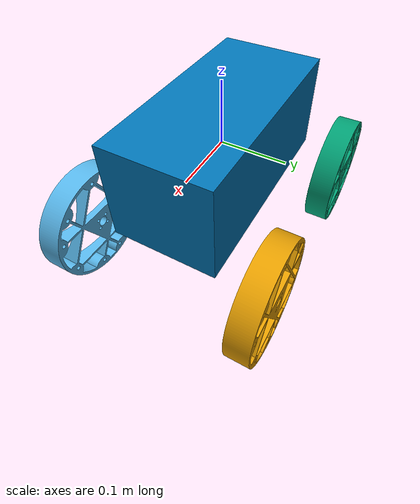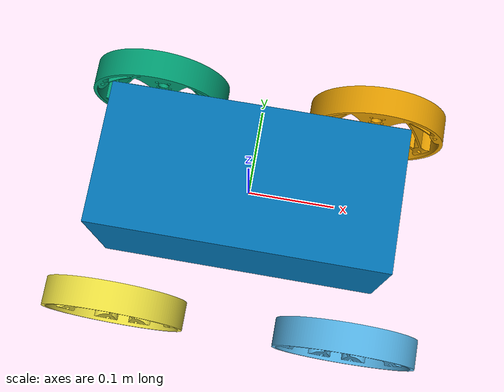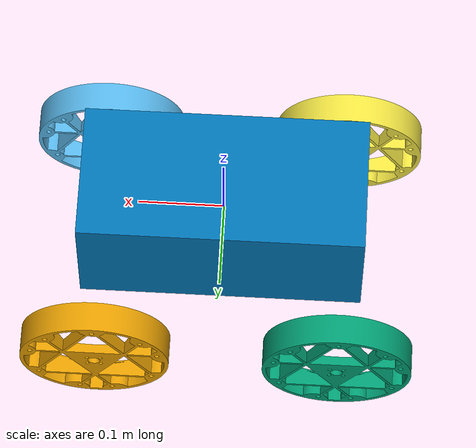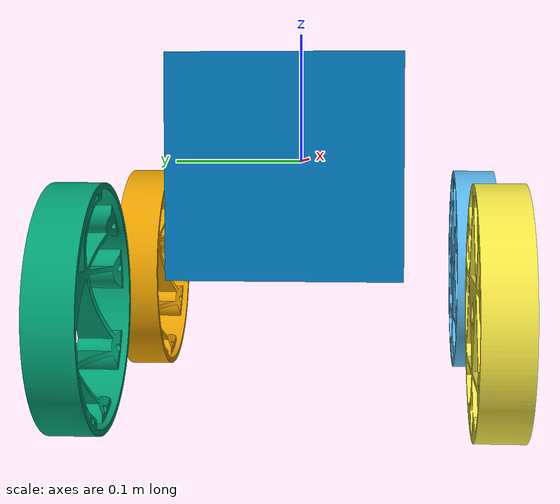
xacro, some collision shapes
<?xml version="1.0" encoding="utf-8"?>
<robot name="khm2" xmlns:xacro="http://www.ros.org/wiki/xacro">
<xacro:include filename="$(find khm2_description)/urdf/macro.xacro"/>

<link name="FL_wheel_link">
  <visual>
    <origin rpy="0 0 0" xyz="0 0 0"/>
    <geometry>
      <mesh filename="package://khm2_description/models/smooth.stl"/>
    </geometry>
  </visual>
  <collision>
    <geometry>
      <mesh filename="package://khm2_description/models/smooth_col.dae"/>
    </geometry>
  </collision>
  <inertial>
    <mass value="0.06925"/>
    <origin xyz="0 0 0"/>
    <xacro:cylinder_inertia m="0.06925" r="0.112" h="0.127"/>
  </inertial>
</link>

<link name="FR_wheel_link">
  <visual>
    <origin rpy="0 0 0" xyz="0 0 0"/>
    <geometry>
      <mesh filename="package://khm2_description/models/smooth.stl"/>
    </geometry>
  </visual>
  <collision>
    <geometry>
      <mesh filename="package://khm2_description/models/smooth_col.dae"/>
    </geometry>
  </collision>
  <inertial>
    <mass value="0.06925"/>
    <origin xyz="0 0 0"/>
    <xacro:cylinder_inertia m="0.06925" r="0.112" h="0.127"/>

  </inertial>

</link>

<link name="BL_wheel_link">
  <visual>
    <origin rpy="0 0 0" xyz="0 0 0"/>
    <geometry>
      <mesh filename="package://khm2_description/models/smooth.stl"/>
    </geometry>
  </visual>
  <collision>
    <geometry>
      <mesh filename="package://khm2_description/models/smooth_col.dae"/>
    </geometry>
  </collision>
  <inertial>
    <mass value="0.06925"/>
    <origin xyz="0 0 0"/>
    <xacro:cylinder_inertia m="0.06925" r="0.112" h="0.127"/>

  </inertial>

</link>

<link name="BR_wheel_link">
  <visual>
    <origin rpy="0 0 0" xyz="0 0 0"/>
    <geometry>
      <mesh filename="package://khm2_description/models/smooth.stl"/>
    </geometry>
  </visual>
  <collision>
    <geometry>
      <mesh filename="package://khm2_description/models/smooth_col.dae"/>
    </geometry>
  </collision>
  <inertial>
    <mass value="0.06925"/>
    <origin xyz="0 0 0"/>
    <xacro:cylinder_inertia m="0.06925" r="0.112" h="0.127"/>
  </inertial>
</link>

<link name="base_link">
  <visual>
    <origin rpy="0 0 0" xyz="0 0 0"/>
    <geometry>
      <mesh filename="package://khm2_description/models/chassis.dae"/>
    </geometry>
  </visual>
  <collision>
    <geometry>
      <box size="0.333 0.16125 0.15428"></box>
    </geometry>
  </collision>
  <inertial>
      <mass value="2.3"/>
      <xacro:box_inertia m="2.0" x="0.333" y="0.16125" z="0.15428"/>
  </inertial>
</link>

<joint name="FL_TO_BASELINK" type="continuous">
	<hardwareInterface>hardware_interface/VelocityJointInterface</hardwareInterface>
	<origin xyz="0.145225 0.145 -0.1" rpy="0 0 1.5707"/>
	<child link="FL_wheel_link"/>
	<parent link="base_link"/>
</joint>

<joint name="FR_TO_BASELINK" type="continuous">
	<hardwareInterface>hardware_interface/VelocityJointInterface</hardwareInterface>
	<origin xyz="0.145225 -0.145 -0.1" rpy="0 0 1.5707"/>
	<child link="FR_wheel_link"/>
	<parent link="base_link"/>
</joint>

<joint name="BL_TO_BASELINK" type="continuous">
	<hardwareInterface>hardware_interface/VelocityJointInterface</hardwareInterface>
	<origin xyz="-0.14225 0.145 -0.1" rpy="0 0 1.5707"/>
	<child link="BL_wheel_link"/>
	<parent link="base_link"/>
</joint>

<joint name="BR_TO_BASELINK" type="continuous">
	<hardwareInterface>hardware_interface/VelocityJointInterface</hardwareInterface>
	<origin xyz="-0.145 -0.145225 -0.1" rpy="0 0 1.5707"/>
	<child link="BR_wheel_link"/>
	<parent link="base_link"/>
</joint>

<!-- Enable the Joint Feedback -->
<gazebo reference="FL_TO_BASELINK">
  <provideFeedback>true</provideFeedback>
  <sensor name="FL_force_torque" type="force_torque">
    <update_rate>1000</update_rate>
  </sensor>
</gazebo>
<gazebo reference="FR_TO_BASELINK">
  <provideFeedback>true</provideFeedback>
  <sensor name="FR_force_torque" type="force_torque">
    <update_rate>1000</update_rate>
  </sensor>
</gazebo>
<gazebo reference="BL_TO_BASELINK">
  <provideFeedback>true</provideFeedback>
  <sensor name="BL_force_torque" type="force_torque">
    <update_rate>1000</update_rate>
  </sensor>
</gazebo>
<gazebo reference="BR_TO_BASELINK">
  <provideFeedback>true</provideFeedback>
  <sensor name="BR_force_torque" type="force_torque">
    <update_rate>1000</update_rate>
  </sensor>
</gazebo>
<gazebo reference="base_link">
  <gravity>true</gravity>
  <sensor name="imu_sensor" type="imu">
    <always_on>true</always_on>
    <update_rate>1000</update_rate>
    <visualize>true</visualize>
    <topic>imu</topic>
    <plugin filename="libgazebo_ros_imu_sensor.so" name="imu_plugin">
      <topicName>imu</topicName>
      <bodyName>base_link</bodyName>
      <updateRateHZ>1000</updateRateHZ>
      <gaussianNoise>0.0</gaussianNoise>
      <xyzOffset>0 0 0</xyzOffset>
      <rpyOffset>0 0 0</rpyOffset>
      <frameName>base_link</frameName>
      <initialOrientationAsReference>false</initialOrientationAsReference>
    </plugin>
    <pose>0 0 0 0 0 0</pose>
  </sensor>
</gazebo>

<gazebo>
   <plugin filename="libgazebo_ros_control.so" name="gazebo_ros_control">
      <updateRate>1000.0</updateRate>
      <updateRateHZ>1000.0</updateRateHZ>
   </plugin>
   <plugin name="p3d_base_controller" filename="libgazebo_ros_p3d.so">
    <alwaysOn>true</alwaysOn>
    <updateRate>1000.0</updateRate>
    <updateRateHZ>1000.0</updateRateHZ>
    <bodyName>base_link</bodyName>
    <topicName>odom</topicName>
    <gaussianNoise>0</gaussianNoise>
    <frameName>world</frameName>
    <xyzOffsets>0 0 0</xyzOffsets>
    <rpyOffsets>0 0 0</rpyOffsets>
  </plugin>

  <!-- Force torque sensors -->
  <plugin name="FL_TO_BASELINK_ft_sensor" filename="libgazebo_ros_ft_sensor.so">
    <updateRate>1000.0</updateRate>
    <topicName>front_left_torque</topicName>
    <jointName>FL_TO_BASELINK</jointName>
  </plugin>
  <plugin name="FR_TO_BASELINK_ft_sensor" filename="libgazebo_ros_ft_sensor.so">
    <updateRate>1000.0</updateRate>
    <topicName>front_right_torque</topicName>
    <jointName>FR_TO_BASELINK</jointName>
  </plugin>
  <plugin name="BL_TO_BASELINK_ft_sensor" filename="libgazebo_ros_ft_sensor.so">
    <updateRate>1000.0</updateRate>
    <topicName>back_left_torque</topicName>
    <jointName>BL_TO_BASELINK</jointName>
  </plugin>
  <plugin name="BR_TO_BASELINK_ft_sensor" filename="libgazebo_ros_ft_sensor.so">
    <updateRate>1000.0</updateRate>
    <topicName>back_right_torque</topicName>
    <jointName>BR_TO_BASELINK</jointName>
  </plugin>
</gazebo>

  <transmission name="FR_trans">
    <type>transmission_interface/SimpleTransmission</type>
    <actuator name="motor1">
      <mechanicalReduction>1</mechanicalReduction>
    </actuator>
    <joint name="FR_TO_BASELINK">
      <hardwareInterface>hardware_interface/VelocityJointInterface</hardwareInterface>
    </joint>
  </transmission>

  <transmission name="FL_trans">
    <type>transmission_interface/SimpleTransmission</type>
    <actuator name="motor2">
      <mechanicalReduction>1</mechanicalReduction>
    </actuator>
    <joint name="FL_TO_BASELINK">
      <hardwareInterface>hardware_interface/VelocityJointInterface</hardwareInterface>
    </joint>
  </transmission>

  <transmission name="BR_trans">
    <type>transmission_interface/SimpleTransmission</type>
    <actuator name="motor3">
      <mechanicalReduction>1</mechanicalReduction>
    </actuator>
    <joint name="BR_TO_BASELINK">
      <hardwareInterface>hardware_interface/VelocityJointInterface</hardwareInterface>
    </joint>
  </transmission>

  <transmission name="BL_trans">
    <type>transmission_interface/SimpleTransmission</type>
    <actuator name="motor4">
      <mechanicalReduction>1</mechanicalReduction>
    </actuator>
    <joint name="BL_TO_BASELINK">
      <hardwareInterface>hardware_interface/VelocityJointInterface</hardwareInterface>
    </joint>
  </transmission>

</robot>

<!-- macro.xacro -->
<robot xmlns:xacro="http://www.ros.org/wiki/xacro" name="macros">

<xacro:macro name="box_inertia" params="m x y z">
  <inertia  ixx="${m*(y*y+z*z)/12}" ixy = "0" ixz = "0"
            iyy="${m*(x*x+z*z)/12}" iyz = "0"
            izz="${m*(x*x+z*z)/12}"/>
</xacro:macro>

<xacro:macro name="cylinder_inertia" params="m r h">
  <inertia    ixx="${m*(3*r*r+h*h)/12}" ixy = "0" ixz = "0"
              iyy="${m*(3*r*r+h*h)/12}" iyz = "0"
              izz="${m*r*r/2}"/>
</xacro:macro>

</robot>
